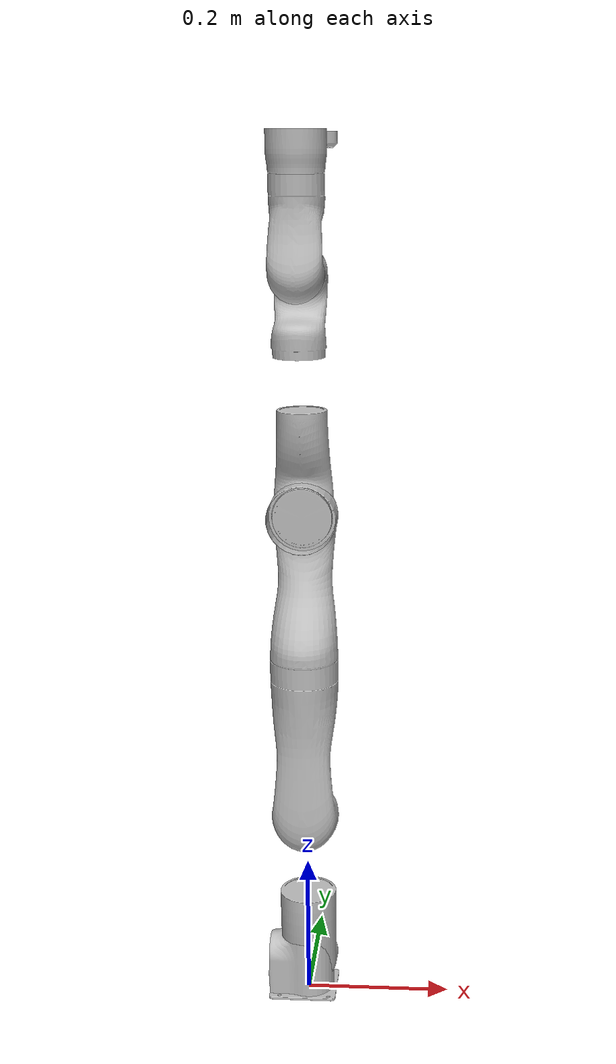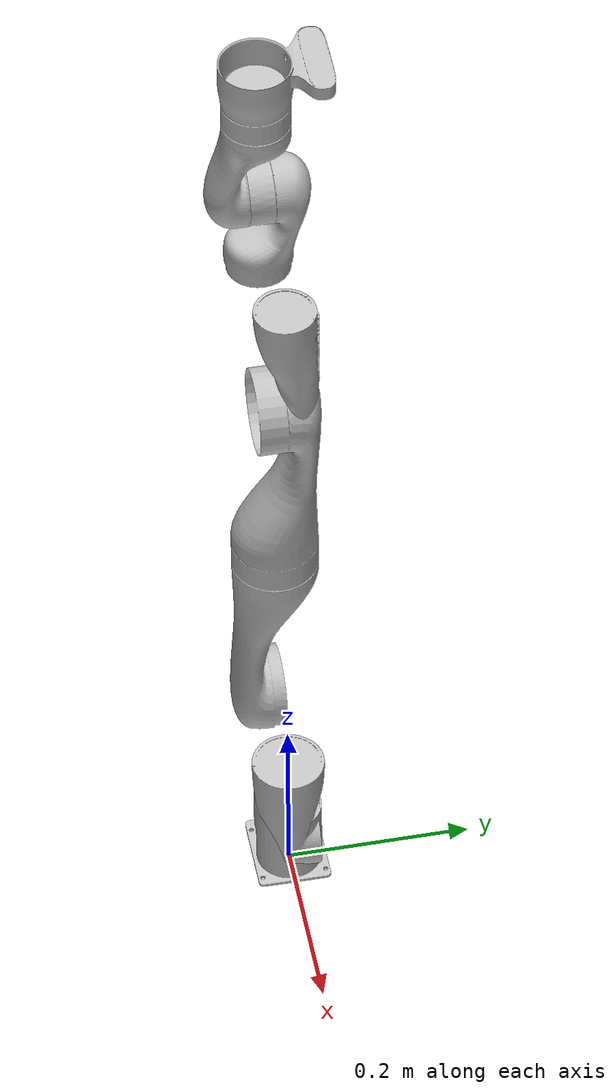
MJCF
<mujoco model="gen3">
  <compiler angle="radian" meshdir="assets"/>

  <option integrator="implicitfast"/>

  <default>
    <default class="visual">
      <geom type="mesh" contype="0" conaffinity="0" group="2" rgba="0.75294 0.75294 0.75294 1"/>
    </default>
    <default class="collision">
      <geom type="mesh" group="3"/>
    </default>
    <joint armature="0.1"/>
    <default class="large_actuator">
      <position kp="2000" kv="100" forcerange="-105 105"/>
    </default>
    <default class="small_actuator">
      <position kp="500" kv="50" forcerange="-52 52"/>
    </default>
    <site size="0.001" rgba="0.5 0.5 0.5 0.3" group="4"/>
  </default>

  <asset>
    <mesh name="base_link" file="base_link.stl"/>
    <mesh name="shoulder_link" file="shoulder_link.stl"/>
    <mesh name="half_arm_1_link" file="half_arm_1_link.stl"/>
    <mesh name="half_arm_2_link" file="half_arm_2_link.stl"/>
    <mesh name="forearm_link" file="forearm_link.stl"/>
    <mesh name="spherical_wrist_1_link" file="spherical_wrist_1_link.stl"/>
    <mesh name="spherical_wrist_2_link" file="spherical_wrist_2_link.stl"/>
    <mesh name="bracelet_with_vision_link" file="bracelet_with_vision_link.stl"/>
  </asset>

  <worldbody>
    <body name="base_link">
      <inertial pos="-0.000648 -0.000166 0.084487" quat="0.999294 0.00139618 -0.0118387 0.035636" mass="1.697"
        diaginertia="0.00462407 0.00449437 0.00207755"/>
      <geom class="visual" mesh="base_link"/>
      <geom class="collision" mesh="base_link"/>
      <body name="shoulder_link" pos="0 0 0.15643" quat="0 1 0 0">
        <inertial pos="-2.3e-05 -0.010364 -0.07336" quat="0.707051 0.0451246 -0.0453544 0.704263" mass="1.3773"
          diaginertia="0.00488868 0.00457 0.00135132"/>
        <joint name="joint_1"/>
        <geom class="visual" mesh="shoulder_link"/>
        <geom class="collision" mesh="shoulder_link"/>
        <body name="half_arm_1_link" pos="0 0.005375 -0.12838" quat="1 1 0 0">
          <inertial pos="-4.4e-05 -0.09958 -0.013278" quat="0.482348 0.516286 -0.516862 0.483366" mass="1.1636"
            diaginertia="0.0113017 0.011088 0.00102532"/>
          <joint name="joint_2" range="-2.24 2.24"/>
          <geom class="visual" mesh="half_arm_1_link"/>
          <geom class="collision" mesh="half_arm_1_link"/>
          <body name="half_arm_2_link" pos="0 -0.21038 -0.006375" quat="1 -1 0 0">
            <inertial pos="-4.4e-05 -0.006641 -0.117892" quat="0.706144 0.0213722 -0.0209128 0.707437" mass="1.1636"
              diaginertia="0.0111633 0.010932 0.00100671"/>
            <joint name="joint_3"/>
            <geom class="visual" mesh="half_arm_2_link"/>
            <geom class="collision" mesh="half_arm_2_link"/>
            <body name="forearm_link" pos="0 0.006375 -0.21038" quat="1 1 0 0">
              <inertial pos="-1.8e-05 -0.075478 -0.015006" quat="0.483678 0.515961 -0.515859 0.483455" mass="0.9302"
                diaginertia="0.00834839 0.008147 0.000598606"/>
              <joint name="joint_4" range="-2.57 2.57"/>
              <geom class="visual" mesh="forearm_link"/>
              <geom class="collision" mesh="forearm_link"/>
              <body name="spherical_wrist_1_link" pos="0 -0.20843 -0.006375" quat="1 -1 0 0">
                <inertial pos="1e-06 -0.009432 -0.063883" quat="0.703558 0.0707492 -0.0707492 0.703558" mass="0.6781"
                  diaginertia="0.00165901 0.001596 0.000346988"/>
                <joint name="joint_5"/>
                <geom class="visual" mesh="spherical_wrist_1_link"/>
                <geom class="collision" mesh="spherical_wrist_1_link"/>
                <body name="spherical_wrist_2_link" pos="0 0.00017505 -0.10593" quat="1 1 0 0">
                  <inertial pos="1e-06 -0.045483 -0.00965" quat="0.44426 0.550121 -0.550121 0.44426" mass="0.6781"
                    diaginertia="0.00170087 0.001641 0.00035013"/>
                  <joint name="joint_6" range="-2.09 2.09"/>
                  <geom class="visual" mesh="spherical_wrist_2_link"/>
                  <geom class="collision" mesh="spherical_wrist_2_link"/>
                  <body name="bracelet_link" pos="0 -0.10593 -0.00017505" quat="1 -1 0 0">
                    <inertial pos="0.000281 0.011402 -0.029798" quat="0.394358 0.596779 -0.577293 0.393789" mass="0.5"
                      diaginertia="0.000657336 0.000587019 0.000320645"/>
                    <joint name="joint_7"/>
                    <geom class="visual" mesh="bracelet_with_vision_link"/>
                    <geom class="collision" mesh="bracelet_with_vision_link"/>
                    <camera name="wrist" pos="0 -0.05639 -0.058475" quat="0 0 0 1" fovy="41.83792730009236"
                      resolution="640 480"/>
                    <site name="pinch_site" pos="0 0 -0.061525" quat="0 1 0 0"/>
                  </body>
                </body>
              </body>
            </body>
          </body>
        </body>
      </body>
    </body>
  </worldbody>

  <actuator>
    <position class="large_actuator" name="joint_1" joint="joint_1"/>
    <position class="large_actuator" name="joint_2" joint="joint_2" ctrlrange="-2.2497294058206907 2.2497294058206907"/>
    <position class="large_actuator" name="joint_3" joint="joint_3"/>
    <position class="large_actuator" name="joint_4" joint="joint_4" ctrlrange="-2.5795966344476193 2.5795966344476193"/>
    <position class="small_actuator" name="joint_5" joint="joint_5"/>
    <position class="small_actuator" name="joint_6" joint="joint_6" ctrlrange="-2.0996310901491784 2.0996310901491784"/>
    <position class="small_actuator" name="joint_7" joint="joint_7"/>
  </actuator>

  <keyframe>
    <key name="home" qpos="0 0.26179939 3.14159265 -2.26892803 0 0.95993109 1.57079633"
      ctrl="0 0.26179939 3.14159265 -2.26892803 0 0.95993109 1.57079633"/>
    <key name="retract" qpos="0 -0.34906585 3.14159265 -2.54818071 0 -0.87266463 1.57079633"
      ctrl="0 -0.34906585 3.14159265 -2.54818071 0 -0.87266463 1.57079633"/>
  </keyframe>
</mujoco>
